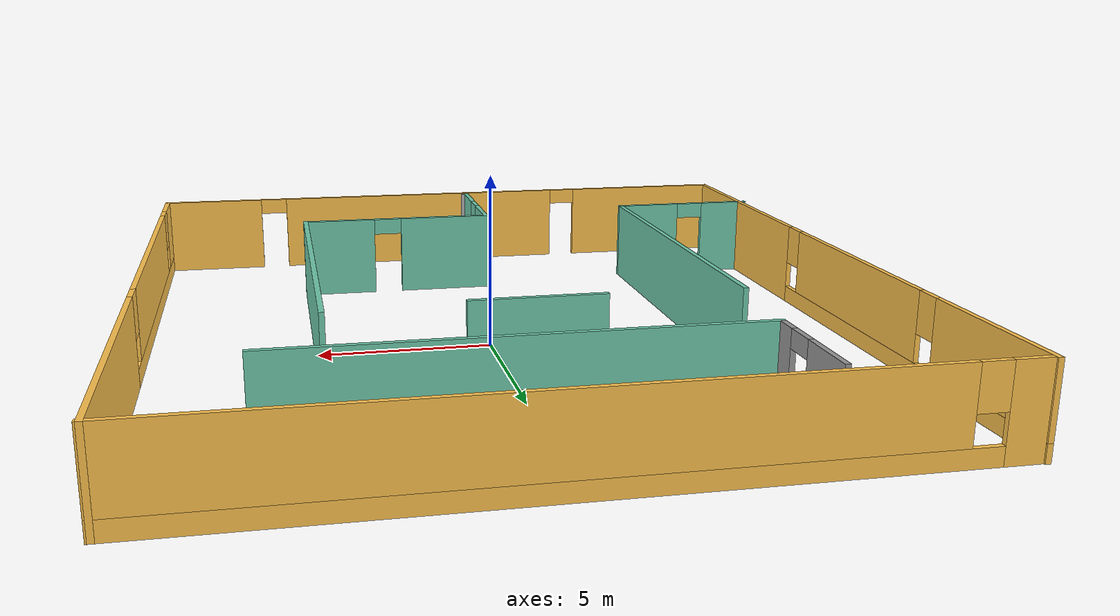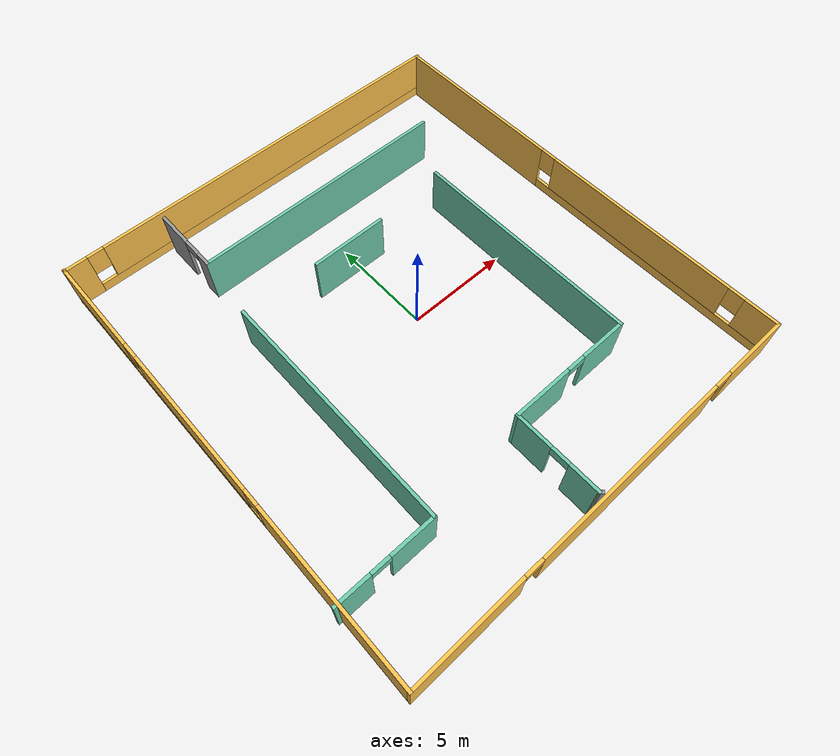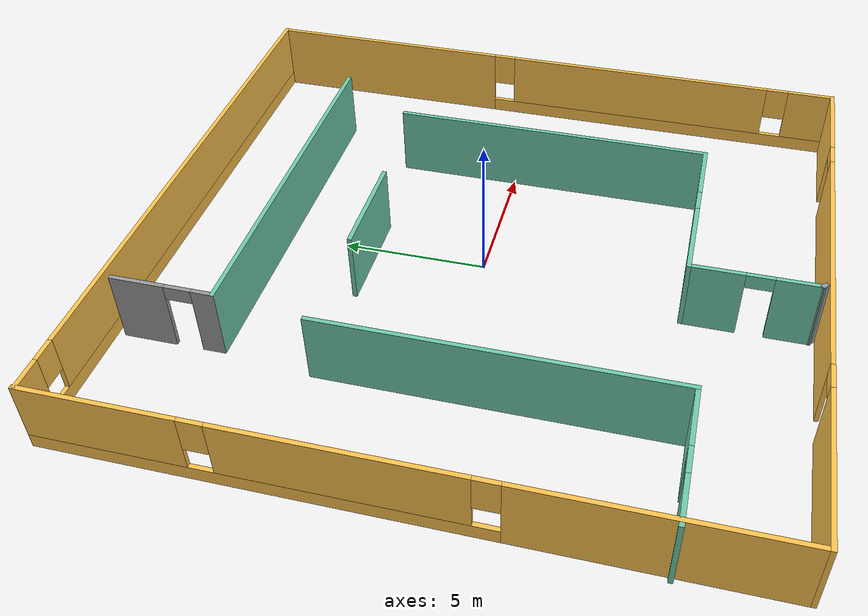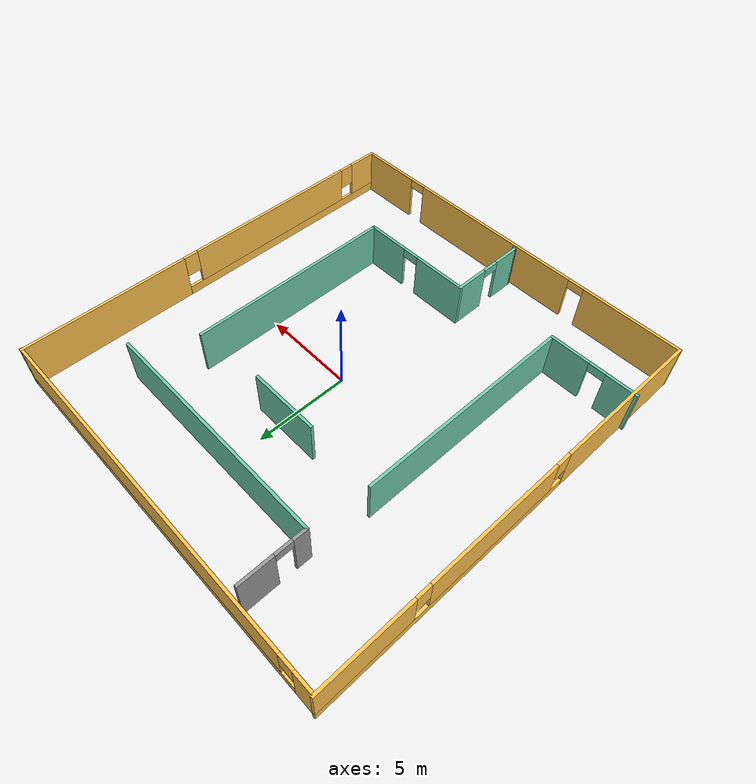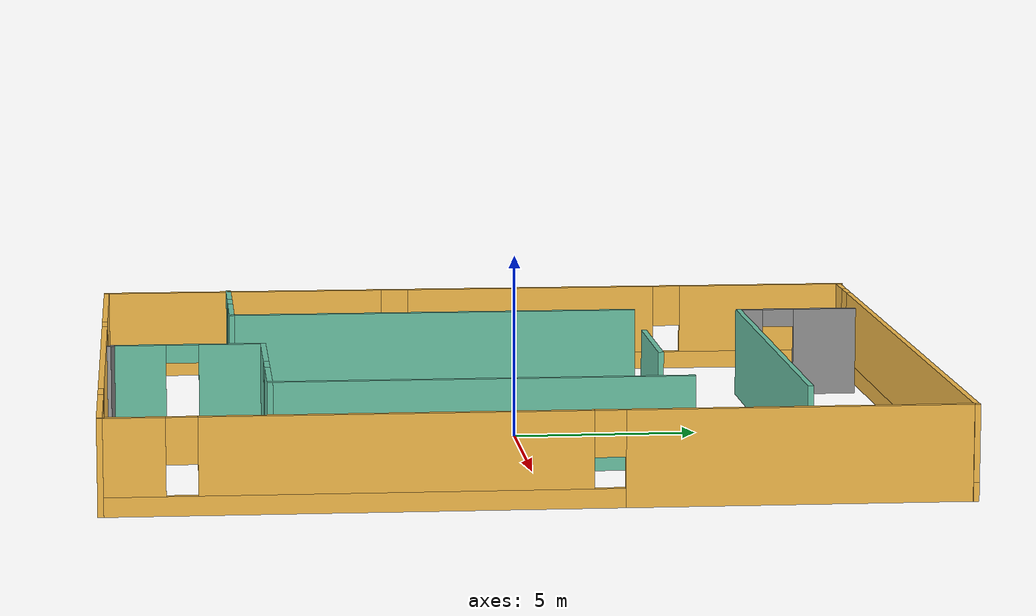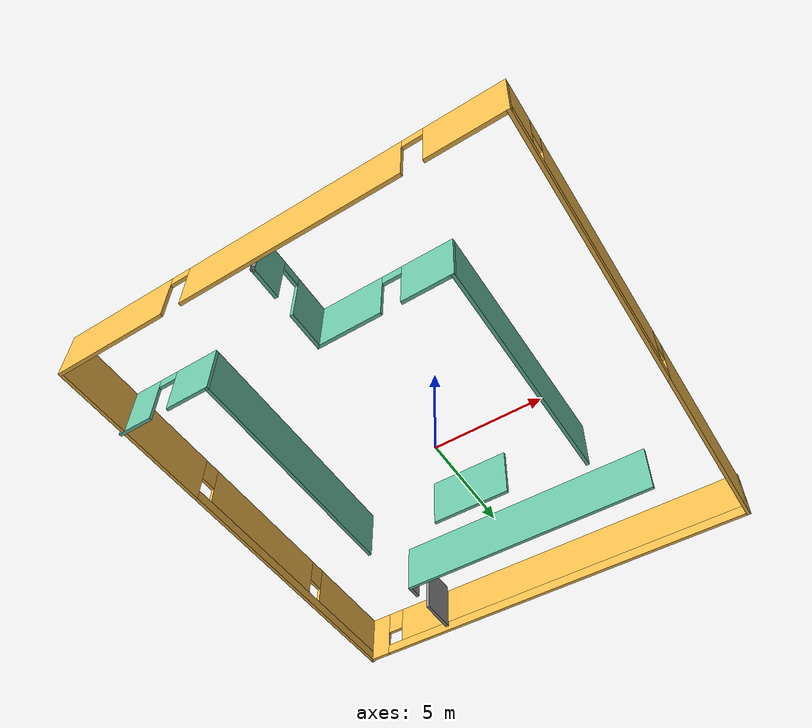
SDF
<?xml version='1.0'?>
<sdf version='1.6'>
  <model name='office_pnd'>
    <pose frame=''>-0.445996 -0.179176 0 0 -0 0</pose>
    <link name='Wall_16'>
      <pose frame=''>0.097541 11.0012 0 0 -0 0</pose>
      <visual name='Wall_16_Visual_0'>
        <pose frame=''>-9.70034 0 1.25 0 -0 0</pose>
        <geometry>
          <box>
            <size>1.09931 0.15 2.5</size>
          </box>
        </geometry>
        <material>
          <script>
            <uri>file://media/materials/scripts/gazebo.material</uri>
            <name>Gazebo/Grey</name>
          </script>
          <ambient>1 0.764706 0.305882 1</ambient>
        </material>
      </visual>
      <collision name='Wall_16_Collision_0'>
        <geometry>
          <box>
            <size>1.09931 0.15 2.5</size>
          </box>
        </geometry>
        <pose frame=''>-9.70034 0 1.25 0 -0 0</pose>
      </collision>
      <visual name='Wall_16_Visual_1'>
        <pose frame=''>0.549656 0 0.25 0 -0 0</pose>
        <geometry>
          <box>
            <size>19.4007 0.15 0.5</size>
          </box>
        </geometry>
        <material>
          <script>
            <uri>file://media/materials/scripts/gazebo.material</uri>
            <name>Gazebo/Grey</name>
          </script>
          <ambient>1 0.764706 0.305882 1</ambient>
        </material>
      </visual>
      <collision name='Wall_16_Collision_1'>
        <geometry>
          <box>
            <size>19.4007 0.15 0.5</size>
          </box>
        </geometry>
        <pose frame=''>0.549656 0 0.25 0 -0 0</pose>
      </collision>
      <visual name='Wall_16_Visual_2'>
        <pose frame=''>0.949656 0 1.5 0 -0 0</pose>
        <geometry>
          <box>
            <size>18.6007 0.15 2</size>
          </box>
        </geometry>
        <material>
          <script>
            <uri>file://media/materials/scripts/gazebo.material</uri>
            <name>Gazebo/Grey</name>
          </script>
          <ambient>1 0.764706 0.305882 1</ambient>
        </material>
      </visual>
      <collision name='Wall_16_Collision_2'>
        <geometry>
          <box>
            <size>18.6007 0.15 2</size>
          </box>
        </geometry>
        <pose frame=''>0.949656 0 1.5 0 -0 0</pose>
      </collision>
      <visual name='Wall_16_Visual_3'>
        <pose frame=''>-8.75069 0 1.9 0 -0 0</pose>
        <geometry>
          <box>
            <size>0.8 0.15 1.2</size>
          </box>
        </geometry>
        <material>
          <script>
            <uri>file://media/materials/scripts/gazebo.material</uri>
            <name>Gazebo/Grey</name>
          </script>
          <ambient>1 0.764706 0.305882 1</ambient>
        </material>
      </visual>
      <collision name='Wall_16_Collision_3'>
        <geometry>
          <box>
            <size>0.8 0.15 1.2</size>
          </box>
        </geometry>
        <pose frame=''>-8.75069 0 1.9 0 -0 0</pose>
      </collision>
    </link>
    <link name='Wall_17'>
      <pose frame=''>10.2323 -0.024395 0 0 0 -1.5708</pose>
      <visual name='Wall_17_Visual_0'>
        <pose frame=''>-6.60362 0 1.25 0 -0 0</pose>
        <geometry>
          <box>
            <size>8.99404 0.15 2.5</size>
          </box>
        </geometry>
        <material>
          <script>
            <uri>file://media/materials/scripts/gazebo.material</uri>
            <name>Gazebo/Grey</name>
          </script>
          <ambient>1 0.764706 0.305882 1</ambient>
        </material>
      </visual>
      <collision name='Wall_17_Collision_0'>
        <geometry>
          <box>
            <size>8.99404 0.15 2.5</size>
          </box>
        </geometry>
        <pose frame=''>-6.60362 0 1.25 0 -0 0</pose>
      </collision>
      <visual name='Wall_17_Visual_1'>
        <pose frame=''>4.49702 0 0.25 0 -0 0</pose>
        <geometry>
          <box>
            <size>13.2072 0.15 0.5</size>
          </box>
        </geometry>
        <material>
          <script>
            <uri>file://media/materials/scripts/gazebo.material</uri>
            <name>Gazebo/Grey</name>
          </script>
          <ambient>1 0.764706 0.305882 1</ambient>
        </material>
      </visual>
      <collision name='Wall_17_Collision_1'>
        <geometry>
          <box>
            <size>13.2072 0.15 0.5</size>
          </box>
        </geometry>
        <pose frame=''>4.49702 0 0.25 0 -0 0</pose>
      </collision>
      <visual name='Wall_17_Visual_2'>
        <pose frame=''>3.64361 0 1.5 0 -0 0</pose>
        <geometry>
          <box>
            <size>9.90042 0.15 2</size>
          </box>
        </geometry>
        <material>
          <script>
            <uri>file://media/materials/scripts/gazebo.material</uri>
            <name>Gazebo/Grey</name>
          </script>
          <ambient>1 0.764706 0.305882 1</ambient>
        </material>
      </visual>
      <collision name='Wall_17_Collision_2'>
        <geometry>
          <box>
            <size>9.90042 0.15 2</size>
          </box>
        </geometry>
        <pose frame=''>3.64361 0 1.5 0 -0 0</pose>
      </collision>
      <visual name='Wall_17_Visual_3'>
        <pose frame=''>10.2472 0 1.5 0 -0 0</pose>
        <geometry>
          <box>
            <size>1.70682 0.15 2</size>
          </box>
        </geometry>
        <material>
          <script>
            <uri>file://media/materials/scripts/gazebo.material</uri>
            <name>Gazebo/Grey</name>
          </script>
          <ambient>1 0.764706 0.305882 1</ambient>
        </material>
      </visual>
      <collision name='Wall_17_Collision_3'>
        <geometry>
          <box>
            <size>1.70682 0.15 2</size>
          </box>
        </geometry>
        <pose frame=''>10.2472 0 1.5 0 -0 0</pose>
      </collision>
      <visual name='Wall_17_Visual_4'>
        <pose frame=''>-1.7066 0 1.9 0 -0 0</pose>
        <geometry>
          <box>
            <size>0.8 0.15 1.2</size>
          </box>
        </geometry>
        <material>
          <script>
            <uri>file://media/materials/scripts/gazebo.material</uri>
            <name>Gazebo/Grey</name>
          </script>
          <ambient>1 0.764706 0.305882 1</ambient>
        </material>
      </visual>
      <collision name='Wall_17_Collision_4'>
        <geometry>
          <box>
            <size>0.8 0.15 1.2</size>
          </box>
        </geometry>
        <pose frame=''>-1.7066 0 1.9 0 -0 0</pose>
      </collision>
      <visual name='Wall_17_Visual_5'>
        <pose frame=''>8.99382 0 1.9 0 -0 0</pose>
        <geometry>
          <box>
            <size>0.8 0.15 1.2</size>
          </box>
        </geometry>
        <material>
          <script>
            <uri>file://media/materials/scripts/gazebo.material</uri>
            <name>Gazebo/Grey</name>
          </script>
          <ambient>1 0.764706 0.305882 1</ambient>
        </material>
      </visual>
      <collision name='Wall_17_Collision_5'>
        <geometry>
          <box>
            <size>0.8 0.15 1.2</size>
          </box>
        </geometry>
        <pose frame=''>8.99382 0 1.9 0 -0 0</pose>
      </collision>
    </link>
    <link name='Wall_18'>
      <pose frame=''>0.057314 -11.05 0 0 -0 3.14159</pose>
      <visual name='Wall_18_Visual_0'>
        <pose frame=''>-8.55747 0 1.25 0 -0 0</pose>
        <geometry>
          <box>
            <size>3.38505 0.15 2.5</size>
          </box>
        </geometry>
        <material>
          <script>
            <uri>file://media/materials/scripts/gazebo.material</uri>
            <name>Gazebo/Grey</name>
          </script>
          <ambient>1 0.764706 0.305882 1</ambient>
        </material>
      </visual>
      <collision name='Wall_18_Collision_0'>
        <geometry>
          <box>
            <size>3.38505 0.15 2.5</size>
          </box>
        </geometry>
        <pose frame=''>-8.55747 0 1.25 0 -0 0</pose>
      </collision>
      <visual name='Wall_18_Visual_1'>
        <pose frame=''>-1.00439 0 1.25 0 -0 0</pose>
        <geometry>
          <box>
            <size>9.9211 0.15 2.5</size>
          </box>
        </geometry>
        <material>
          <script>
            <uri>file://media/materials/scripts/gazebo.material</uri>
            <name>Gazebo/Grey</name>
          </script>
          <ambient>1 0.764706 0.305882 1</ambient>
        </material>
      </visual>
      <collision name='Wall_18_Collision_1'>
        <geometry>
          <box>
            <size>9.9211 0.15 2.5</size>
          </box>
        </geometry>
        <pose frame=''>-1.00439 0 1.25 0 -0 0</pose>
      </collision>
      <visual name='Wall_18_Visual_2'>
        <pose frame=''>7.55308 0 1.25 0 -0 0</pose>
        <geometry>
          <box>
            <size>5.39384 0.15 2.5</size>
          </box>
        </geometry>
        <material>
          <script>
            <uri>file://media/materials/scripts/gazebo.material</uri>
            <name>Gazebo/Grey</name>
          </script>
          <ambient>1 0.764706 0.305882 1</ambient>
        </material>
      </visual>
      <collision name='Wall_18_Collision_2'>
        <geometry>
          <box>
            <size>5.39384 0.15 2.5</size>
          </box>
        </geometry>
        <pose frame=''>7.55308 0 1.25 0 -0 0</pose>
      </collision>
      <visual name='Wall_18_Visual_3'>
        <pose frame=''>-6.41495 0 2.25 0 -0 0</pose>
        <geometry>
          <box>
            <size>0.9 0.15 0.5</size>
          </box>
        </geometry>
        <material>
          <script>
            <uri>file://media/materials/scripts/gazebo.material</uri>
            <name>Gazebo/Grey</name>
          </script>
          <ambient>1 0.764706 0.305882 1</ambient>
        </material>
      </visual>
      <collision name='Wall_18_Collision_3'>
        <geometry>
          <box>
            <size>0.9 0.15 0.5</size>
          </box>
        </geometry>
        <pose frame=''>-6.41495 0 2.25 0 -0 0</pose>
      </collision>
      <visual name='Wall_18_Visual_4'>
        <pose frame=''>4.40616 0 2.25 0 -0 0</pose>
        <geometry>
          <box>
            <size>0.9 0.15 0.5</size>
          </box>
        </geometry>
        <material>
          <script>
            <uri>file://media/materials/scripts/gazebo.material</uri>
            <name>Gazebo/Grey</name>
          </script>
          <ambient>1 0.764706 0.305882 1</ambient>
        </material>
      </visual>
      <collision name='Wall_18_Collision_4'>
        <geometry>
          <box>
            <size>0.9 0.15 0.5</size>
          </box>
        </geometry>
        <pose frame=''>4.40616 0 2.25 0 -0 0</pose>
      </collision>
    </link>
    <link name='Wall_19'>
      <pose frame=''>-10.1177 3.7e-05 0 0 -0 1.5708</pose>
      <visual name='Wall_19_Visual_0'>
        <pose frame=''>-6.99312 0 1.25 0 -0 0</pose>
        <geometry>
          <box>
            <size>8.26377 0.15 2.5</size>
          </box>
        </geometry>
        <material>
          <script>
            <uri>file://media/materials/scripts/gazebo.material</uri>
            <name>Gazebo/Grey</name>
          </script>
          <ambient>1 0.764706 0.305882 1</ambient>
        </material>
      </visual>
      <collision name='Wall_19_Collision_0'>
        <geometry>
          <box>
            <size>8.26377 0.15 2.5</size>
          </box>
        </geometry>
        <pose frame=''>-6.99312 0 1.25 0 -0 0</pose>
      </collision>
      <visual name='Wall_19_Visual_1'>
        <pose frame=''>4.13188 0 0.25 0 -0 0</pose>
        <geometry>
          <box>
            <size>13.9862 0.15 0.5</size>
          </box>
        </geometry>
        <material>
          <script>
            <uri>file://media/materials/scripts/gazebo.material</uri>
            <name>Gazebo/Grey</name>
          </script>
          <ambient>1 0.764706 0.305882 1</ambient>
        </material>
      </visual>
      <collision name='Wall_19_Collision_1'>
        <geometry>
          <box>
            <size>13.9862 0.15 0.5</size>
          </box>
        </geometry>
        <pose frame=''>4.13188 0 0.25 0 -0 0</pose>
      </collision>
      <visual name='Wall_19_Visual_2'>
        <pose frame=''>1.64194 0 1.5 0 -0 0</pose>
        <geometry>
          <box>
            <size>7.40634 0.15 2</size>
          </box>
        </geometry>
        <material>
          <script>
            <uri>file://media/materials/scripts/gazebo.material</uri>
            <name>Gazebo/Grey</name>
          </script>
          <ambient>1 0.764706 0.305882 1</ambient>
        </material>
      </visual>
      <collision name='Wall_19_Collision_2'>
        <geometry>
          <box>
            <size>7.40634 0.15 2</size>
          </box>
        </geometry>
        <pose frame=''>1.64194 0 1.5 0 -0 0</pose>
      </collision>
      <visual name='Wall_19_Visual_3'>
        <pose frame=''>8.63505 0 1.5 0 -0 0</pose>
        <geometry>
          <box>
            <size>4.97989 0.15 2</size>
          </box>
        </geometry>
        <material>
          <script>
            <uri>file://media/materials/scripts/gazebo.material</uri>
            <name>Gazebo/Grey</name>
          </script>
          <ambient>1 0.764706 0.305882 1</ambient>
        </material>
      </visual>
      <collision name='Wall_19_Collision_3'>
        <geometry>
          <box>
            <size>4.97989 0.15 2</size>
          </box>
        </geometry>
        <pose frame=''>8.63505 0 1.5 0 -0 0</pose>
      </collision>
      <visual name='Wall_19_Visual_4'>
        <pose frame=''>-2.46123 0 1.9 0 -0 0</pose>
        <geometry>
          <box>
            <size>0.8 0.15 1.2</size>
          </box>
        </geometry>
        <material>
          <script>
            <uri>file://media/materials/scripts/gazebo.material</uri>
            <name>Gazebo/Grey</name>
          </script>
          <ambient>1 0.764706 0.305882 1</ambient>
        </material>
      </visual>
      <collision name='Wall_19_Collision_4'>
        <geometry>
          <box>
            <size>0.8 0.15 1.2</size>
          </box>
        </geometry>
        <pose frame=''>-2.46123 0 1.9 0 -0 0</pose>
      </collision>
      <visual name='Wall_19_Visual_5'>
        <pose frame=''>5.74511 0 1.9 0 -0 0</pose>
        <geometry>
          <box>
            <size>0.8 0.15 1.2</size>
          </box>
        </geometry>
        <material>
          <script>
            <uri>file://media/materials/scripts/gazebo.material</uri>
            <name>Gazebo/Grey</name>
          </script>
          <ambient>1 0.764706 0.305882 1</ambient>
        </material>
      </visual>
      <collision name='Wall_19_Collision_5'>
        <geometry>
          <box>
            <size>0.8 0.15 1.2</size>
          </box>
        </geometry>
        <pose frame=''>5.74511 0 1.9 0 -0 0</pose>
      </collision>
    </link>
    <link name='Wall_21'>
      <collision name='Wall_21_Collision'>
        <geometry>
          <box>
            <size>11.75 0.15 2.5</size>
          </box>
        </geometry>
        <pose frame=''>0 0 1.25 0 -0 0</pose>
      </collision>
      <visual name='Wall_21_Visual'>
        <pose frame=''>0 0 1.25 0 -0 0</pose>
        <geometry>
          <box>
            <size>11.75 0.15 2.5</size>
          </box>
        </geometry>
        <material>
          <script>
            <uri>file://media/materials/scripts/gazebo.material</uri>
            <name>Gazebo/Grey</name>
          </script>
          <ambient>0.435294 0.796078 0.67451 1</ambient>
        </material>
      </visual>
      <pose frame=''>-5.67254 -1.62415 0 0 0 -1.5708</pose>
    </link>
    <link name='Wall_22'>
      <pose frame=''>-7.97254 -7.42415 0 0 -0 3.14159</pose>
      <visual name='Wall_22_Visual_0'>
        <pose frame=''>-1.29345 0 1.25 0 -0 0</pose>
        <geometry>
          <box>
            <size>2.16311 0.15 2.5</size>
          </box>
        </geometry>
        <material>
          <script>
            <uri>file://media/materials/scripts/gazebo.material</uri>
            <name>Gazebo/Grey</name>
          </script>
          <ambient>0.435294 0.796078 0.67451 1</ambient>
        </material>
      </visual>
      <collision name='Wall_22_Collision_0'>
        <geometry>
          <box>
            <size>2.16311 0.15 2.5</size>
          </box>
        </geometry>
        <pose frame=''>-1.29345 0 1.25 0 -0 0</pose>
      </collision>
      <visual name='Wall_22_Visual_1'>
        <pose frame=''>1.53155 0 1.25 0 -0 0</pose>
        <geometry>
          <box>
            <size>1.68689 0.15 2.5</size>
          </box>
        </geometry>
        <material>
          <script>
            <uri>file://media/materials/scripts/gazebo.material</uri>
            <name>Gazebo/Grey</name>
          </script>
          <ambient>0.435294 0.796078 0.67451 1</ambient>
        </material>
      </visual>
      <collision name='Wall_22_Collision_1'>
        <geometry>
          <box>
            <size>1.68689 0.15 2.5</size>
          </box>
        </geometry>
        <pose frame=''>1.53155 0 1.25 0 -0 0</pose>
      </collision>
      <visual name='Wall_22_Visual_2'>
        <pose frame=''>0.238108 0 2.25 0 -0 0</pose>
        <geometry>
          <box>
            <size>0.9 0.15 0.5</size>
          </box>
        </geometry>
        <material>
          <script>
            <uri>file://media/materials/scripts/gazebo.material</uri>
            <name>Gazebo/Grey</name>
          </script>
          <ambient>0.435294 0.796078 0.67451 1</ambient>
        </material>
      </visual>
      <collision name='Wall_22_Collision_2'>
        <geometry>
          <box>
            <size>0.9 0.15 0.5</size>
          </box>
        </geometry>
        <pose frame=''>0.238108 0 2.25 0 -0 0</pose>
      </collision>
    </link>
    <link name='Wall_24'>
      <pose frame=''>-5.36664 8.9248 0 0 0 -1.5708</pose>
      <visual name='Wall_24_Visual_0'>
        <pose frame=''>-0.837668 0 1.25 0 -0 0</pose>
        <geometry>
          <box>
            <size>1.82466 0.15 2.5</size>
          </box>
        </geometry>
        <material>
          <script>
            <uri>file://media/materials/scripts/gazebo.material</uri>
            <name>Gazebo/Grey</name>
          </script>
          <ambient>1 1 1 1</ambient>
        </material>
      </visual>
      <collision name='Wall_24_Collision_0'>
        <geometry>
          <box>
            <size>1.82466 0.15 2.5</size>
          </box>
        </geometry>
        <pose frame=''>-0.837668 0 1.25 0 -0 0</pose>
      </collision>
      <visual name='Wall_24_Visual_1'>
        <pose frame=''>1.36233 0 1.25 0 -0 0</pose>
        <geometry>
          <box>
            <size>0.775335 0.15 2.5</size>
          </box>
        </geometry>
        <material>
          <script>
            <uri>file://media/materials/scripts/gazebo.material</uri>
            <name>Gazebo/Grey</name>
          </script>
          <ambient>1 1 1 1</ambient>
        </material>
      </visual>
      <collision name='Wall_24_Collision_1'>
        <geometry>
          <box>
            <size>0.775335 0.15 2.5</size>
          </box>
        </geometry>
        <pose frame=''>1.36233 0 1.25 0 -0 0</pose>
      </collision>
      <visual name='Wall_24_Visual_2'>
        <pose frame=''>0.524665 0 2.25 0 -0 0</pose>
        <geometry>
          <box>
            <size>0.9 0.15 0.5</size>
          </box>
        </geometry>
        <material>
          <script>
            <uri>file://media/materials/scripts/gazebo.material</uri>
            <name>Gazebo/Grey</name>
          </script>
          <ambient>1 1 1 1</ambient>
        </material>
      </visual>
      <collision name='Wall_24_Collision_2'>
        <geometry>
          <box>
            <size>0.9 0.15 0.5</size>
          </box>
        </geometry>
        <pose frame=''>0.524665 0 2.25 0 -0 0</pose>
      </collision>
    </link>
    <link name='Wall_25'>
      <collision name='Wall_25_Collision'>
        <geometry>
          <box>
            <size>12.75 0.15 2.5</size>
          </box>
        </geometry>
        <pose frame=''>0 0 1.25 0 -0 0</pose>
      </collision>
      <visual name='Wall_25_Visual'>
        <pose frame=''>0 0 1.25 0 -0 0</pose>
        <geometry>
          <box>
            <size>12.75 0.15 2.5</size>
          </box>
        </geometry>
        <material>
          <script>
            <uri>file://media/materials/scripts/gazebo.material</uri>
            <name>Gazebo/Grey</name>
          </script>
          <ambient>0.435294 0.796078 0.67451 1</ambient>
        </material>
      </visual>
      <pose frame=''>0.933361 7.2498 0 0 -0 0</pose>
    </link>
    <link name='Wall_28'>
      <collision name='Wall_28_Collision'>
        <geometry>
          <box>
            <size>11.25 0.15 2.5</size>
          </box>
        </geometry>
        <pose frame=''>0 0 1.25 0 -0 0</pose>
      </collision>
      <visual name='Wall_28_Visual'>
        <pose frame=''>0 0 1.25 0 -0 0</pose>
        <geometry>
          <box>
            <size>11.25 0.15 2.5</size>
          </box>
        </geometry>
        <material>
          <script>
            <uri>file://media/materials/scripts/gazebo.material</uri>
            <name>Gazebo/Grey</name>
          </script>
          <ambient>0.435294 0.796078 0.67451 1</ambient>
        </material>
      </visual>
      <pose frame=''>5.4623 -1.12943 0 0 0 -1.5708</pose>
    </link>
    <link name='Wall_29'>
      <pose frame=''>2.4123 -6.67943 0 0 -0 3.14159</pose>
      <visual name='Wall_29_Visual_0'>
        <pose frame=''>-1.94692 0 1.25 0 -0 0</pose>
        <geometry>
          <box>
            <size>2.35617 0.15 2.5</size>
          </box>
        </geometry>
        <material>
          <script>
            <uri>file://media/materials/scripts/gazebo.material</uri>
            <name>Gazebo/Grey</name>
          </script>
          <ambient>0.435294 0.796078 0.67451 1</ambient>
        </material>
      </visual>
      <collision name='Wall_29_Collision_0'>
        <geometry>
          <box>
            <size>2.35617 0.15 2.5</size>
          </box>
        </geometry>
        <pose frame=''>-1.94692 0 1.25 0 -0 0</pose>
      </collision>
      <visual name='Wall_29_Visual_1'>
        <pose frame=''>1.62808 0 1.25 0 -0 0</pose>
        <geometry>
          <box>
            <size>2.99383 0.15 2.5</size>
          </box>
        </geometry>
        <material>
          <script>
            <uri>file://media/materials/scripts/gazebo.material</uri>
            <name>Gazebo/Grey</name>
          </script>
          <ambient>0.435294 0.796078 0.67451 1</ambient>
        </material>
      </visual>
      <collision name='Wall_29_Collision_1'>
        <geometry>
          <box>
            <size>2.99383 0.15 2.5</size>
          </box>
        </geometry>
        <pose frame=''>1.62808 0 1.25 0 -0 0</pose>
      </collision>
      <visual name='Wall_29_Visual_2'>
        <pose frame=''>-0.318833 0 2.25 0 -0 0</pose>
        <geometry>
          <box>
            <size>0.9 0.15 0.5</size>
          </box>
        </geometry>
        <material>
          <script>
            <uri>file://media/materials/scripts/gazebo.material</uri>
            <name>Gazebo/Grey</name>
          </script>
          <ambient>0.435294 0.796078 0.67451 1</ambient>
        </material>
      </visual>
      <collision name='Wall_29_Collision_2'>
        <geometry>
          <box>
            <size>0.9 0.15 0.5</size>
          </box>
        </geometry>
        <pose frame=''>-0.318833 0 2.25 0 -0 0</pose>
      </collision>
    </link>
    <link name='Wall_30'>
      <pose frame=''>-0.637698 -8.72943 0 0 0 -1.5708</pose>
      <visual name='Wall_30_Visual_0'>
        <pose frame=''>-1.20345 0 1.25 0 -0 0</pose>
        <geometry>
          <box>
            <size>1.84311 0.15 2.5</size>
          </box>
        </geometry>
        <material>
          <script>
            <uri>file://media/materials/scripts/gazebo.material</uri>
            <name>Gazebo/Grey</name>
          </script>
          <ambient>0.435294 0.796078 0.67451 1</ambient>
        </material>
      </visual>
      <collision name='Wall_30_Collision_0'>
        <geometry>
          <box>
            <size>1.84311 0.15 2.5</size>
          </box>
        </geometry>
        <pose frame=''>-1.20345 0 1.25 0 -0 0</pose>
      </collision>
      <visual name='Wall_30_Visual_1'>
        <pose frame=''>1.37156 0 1.25 0 -0 0</pose>
        <geometry>
          <box>
            <size>1.50689 0.15 2.5</size>
          </box>
        </geometry>
        <material>
          <script>
            <uri>file://media/materials/scripts/gazebo.material</uri>
            <name>Gazebo/Grey</name>
          </script>
          <ambient>0.435294 0.796078 0.67451 1</ambient>
        </material>
      </visual>
      <collision name='Wall_30_Collision_1'>
        <geometry>
          <box>
            <size>1.50689 0.15 2.5</size>
          </box>
        </geometry>
        <pose frame=''>1.37156 0 1.25 0 -0 0</pose>
      </collision>
      <visual name='Wall_30_Visual_2'>
        <pose frame=''>0.168111 0 2.25 0 -0 0</pose>
        <geometry>
          <box>
            <size>0.9 0.15 0.5</size>
          </box>
        </geometry>
        <material>
          <script>
            <uri>file://media/materials/scripts/gazebo.material</uri>
            <name>Gazebo/Grey</name>
          </script>
          <ambient>0.435294 0.796078 0.67451 1</ambient>
        </material>
      </visual>
      <collision name='Wall_30_Collision_2'>
        <geometry>
          <box>
            <size>0.9 0.15 0.5</size>
          </box>
        </geometry>
        <pose frame=''>0.168111 0 2.25 0 -0 0</pose>
      </collision>
    </link>
    <link name='Wall_31'>
      <collision name='Wall_31_Collision'>
        <geometry>
          <box>
            <size>0.25 0.15 2.5</size>
          </box>
        </geometry>
        <pose frame=''>0 0 1.25 0 -0 0</pose>
      </collision>
      <visual name='Wall_31_Visual'>
        <pose frame=''>0 0 1.25 0 -0 0</pose>
        <geometry>
          <box>
            <size>0.25 0.15 2.5</size>
          </box>
        </geometry>
        <material>
          <script>
            <uri>file://media/materials/scripts/gazebo.material</uri>
            <name>Gazebo/Grey</name>
          </script>
          <ambient>1 1 1 1</ambient>
        </material>
      </visual>
      <pose frame=''>-0.602343 -10.8148 0 0 0 -0.785398</pose>
    </link>
    <link name='Wall_40'>
      <collision name='Wall_40_Collision'>
        <geometry>
          <box>
            <size>3.75 0.15 2.5</size>
          </box>
        </geometry>
        <pose frame=''>0 0 1.25 0 -0 0</pose>
      </collision>
      <visual name='Wall_40_Visual'>
        <pose frame=''>0 0 1.25 0 -0 0</pose>
        <geometry>
          <box>
            <size>3.75 0.15 2.5</size>
          </box>
        </geometry>
        <material>
          <script>
            <uri>file://media/materials/scripts/gazebo.material</uri>
            <name>Gazebo/Grey</name>
          </script>
          <ambient>0.435294 0.796078 0.67451 1</ambient>
        </material>
      </visual>
      <pose frame=''>-0.094987 4.0556 0 0 -0 0</pose>
    </link>
    <static>1</static>
  </model>
</sdf>
